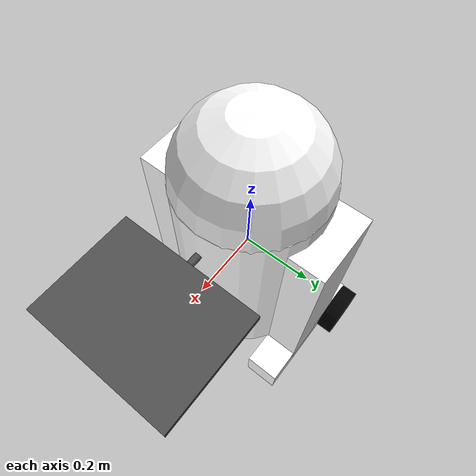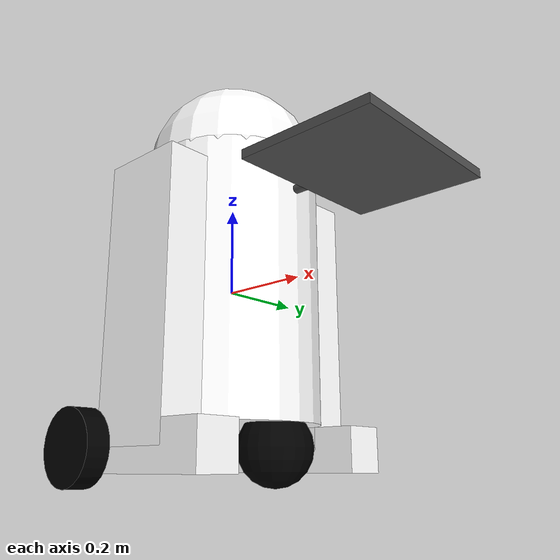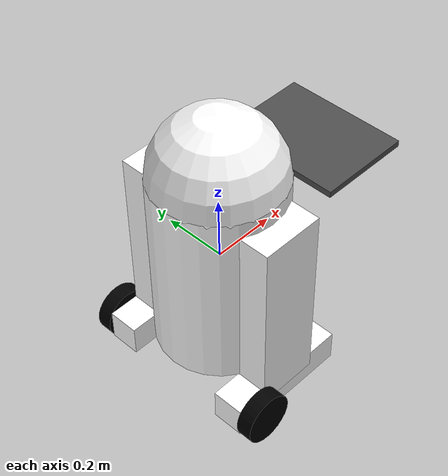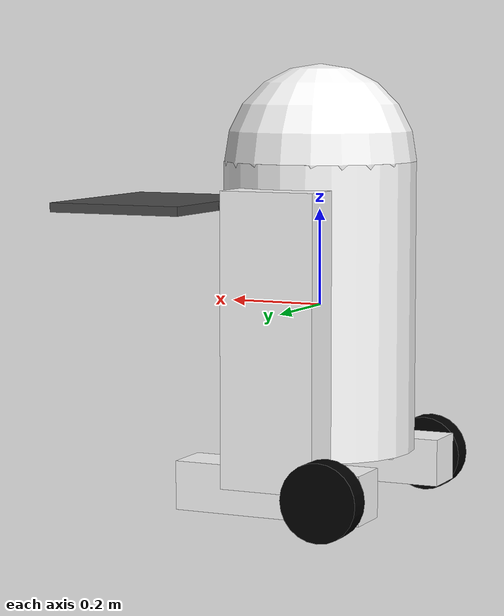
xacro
<?xml version="1.0"?>
<robot xmlns:xacro="http://www.ros.org/wiki/xacro">

  <xacro:include filename="inertial_macros.xacro"/>

  <material name="blue">
    <color rgba="0 0 0.8 1"/>
  </material>
  <material name="black">
    <color rgba="0 0 0 1"/>
  </material>
  <material name="white">
    <color rgba="1 1 1 1"/>
  </material>
  <material name="gray">
    <color rgba="0.65 0.65 0.65 1"/>
  </material>
  <material name="dark gray">
  <color rgba="0.3 0.3 0.3 1"/>
</material>

  <link name="base_link">
    <visual>
      <geometry>
        <cylinder length="0.6" radius="0.2"/>
      </geometry>
      <material name="white"/>
    </visual>
    <collision>
      <geometry>
        <cylinder length="0.6" radius="0.2"/>
      </geometry>
    </collision>
    <xacro:inertial_cylinder mass="1" length="0.6" radius="0.2">
        <origin xyz="0 0 0" rpy="0 0 0"/>
    </xacro:inertial_cylinder>
  </link>
   <gazebo reference="base_link">
        <material>Gazebo/White</material>
    </gazebo>

  <joint name="base_footprint_joint" type="fixed">
        <parent link="base_link"/>
        <child link="base_footprint"/>
        <origin xyz="0 0 0" rpy="0 0 0"/>
    </joint>

    <link name="base_footprint"></link>

  <link name="right_leg">
    <visual>
      <geometry>
        <box size="0.6 0.1 0.2"/>
      </geometry>
      <origin rpy="0 1.57075 0" xyz="0 0 -0.3"/>
      <material name="white"/>
    </visual>
    <collision>
      <geometry>
        <box size="0.6 0.1 0.2"/>
      </geometry>
      <origin rpy="0 1.57075 0" xyz="0 0 -0.3"/>
    </collision>
    <xacro:inertial_box mass="0.5" x="0.6" y="0.1" z="0.2">
        <origin xyz="0 0 -0.3" rpy="0 1.57075 0"/>
    </xacro:inertial_box>
  </link>
  <gazebo reference="right_leg">
      <material>Gazebo/White</material>
  </gazebo>

  <joint name="base_to_right_leg" type="fixed">
    <parent link="base_link"/>
    <child link="right_leg"/>
    <origin xyz="0 -0.22 0.25"/>
  </joint>

  <link name="right_base">
    <visual>
      <geometry>
        <box size="0.4 0.1 0.1"/>
      </geometry>
      <material name="white"/>
    </visual>
    <collision>
      <geometry>
        <box size="0.4 0.1 0.1"/>
      </geometry>
    </collision>
    <xacro:inertial_box mass="0.5" x="0.4" y="0.1" z="0.1">
        <origin xyz="0 0 0" rpy="0 0 0"/>
    </xacro:inertial_box>
  </link>
  <gazebo reference="right_base">
      <material>Gazebo/White</material>
  </gazebo>

  <joint name="right_base_joint" type="fixed">
    <parent link="right_leg"/>
    <child link="right_base"/>
    <origin xyz="0 0 -0.6"/>
  </joint>

  <link name="right_back_wheel">
    <visual>
      <origin rpy="1.57075 0 0" xyz="0 0 0"/>
      <geometry>
        <cylinder length="0.05" radius="0.08"/>
      </geometry>
      <material name="black"/>
    </visual>

    <collision>
      <origin rpy="1.57075 0 0" xyz="0 0 0"/>
      <geometry>
        <cylinder length="0.05" radius="0.08"/>
      </geometry>
    </collision>

    <xacro:inertial_cylinder mass="0.5" length="0.05" radius="0.08">
        <origin xyz="0 0 0" rpy="1.57075 0 0"/>
    </xacro:inertial_cylinder>
  </link>
  <gazebo reference="right_back_wheel">
      <material>Gazebo/Black</material>
  </gazebo>

  <joint name="right_back_wheel_joint" type="continuous">
    <axis rpy="0 0 0" xyz="0 1 0"/>
    <parent link="right_base"/>
    <child link="right_back_wheel"/>
    <origin rpy="0 0 0" xyz="-0.133333333333 -0.075 0"/>
  </joint>

  <link name="left_leg">
    <visual>
      <geometry>
        <box size="0.6 0.1 0.2"/>
      </geometry>
      <origin rpy="0 1.57075 0" xyz="0 0 -0.3"/>
      <material name="white"/>
    </visual>

    <collision>
      <geometry>
        <box size="0.6 0.1 0.2"/>
      </geometry>
      <origin rpy="0 1.57075 0" xyz="0 0 -0.3"/>
    </collision>

    <xacro:inertial_box mass="0.5" x="0.6" y="0.1" z="0.2">
        <origin xyz="0 0 -0.3" rpy="0 1.57075 0"/>
    </xacro:inertial_box>
  </link>
  <gazebo reference="left_leg">
      <material>Gazebo/White</material>
  </gazebo>

  <joint name="base_to_left_leg" type="fixed">
    <parent link="base_link"/>
    <child link="left_leg"/>
    <origin xyz="0 0.22 0.25"/>
  </joint>

  <link name="left_base">
    <visual>
      <geometry>
        <box size="0.4 0.1 0.1"/>
      </geometry>
      <material name="white"/>
    </visual>

    <collision>
      <geometry>
        <box size="0.4 0.1 0.1"/>
      </geometry>
    </collision>
     <xacro:inertial_box mass="0.5" x="0.4" y="0.1" z="0.1">
        <origin xyz="0 0 0" rpy="0 0 0"/>
    </xacro:inertial_box>
  </link>
  <gazebo reference="left_base">
      <material>Gazebo/White</material>
  </gazebo>

  <joint name="left_base_joint" type="fixed">
    <parent link="left_leg"/>
    <child link="left_base"/>
    <origin xyz="0 0 -0.6"/>
  </joint>

  <link name="left_back_wheel">
    <visual>
      <origin rpy="1.57075 0 0" xyz="0 0 0"/>
      <geometry>
        <cylinder length="0.05" radius="0.08"/>
      </geometry>
      <material name="black"/>
    </visual>

    <collision>
      <origin rpy="1.57075 0 0" xyz="0 0 0"/>
      <geometry>
        <cylinder length="0.05" radius="0.08"/>
      </geometry>
    </collision>

    <xacro:inertial_cylinder mass="0.5" length="0.05" radius="0.08">
        <origin xyz="0 0 0" rpy="1.57075 0 0"/>
    </xacro:inertial_cylinder>
  </link>
  <gazebo reference="left_back_wheel">
      <material>Gazebo/Black</material>
  </gazebo>

  <joint name="left_back_wheel_joint" type="continuous">
    <axis rpy="0 0 0" xyz="0 1 0"/>
    <parent link="left_base"/>
    <child link="left_back_wheel"/>
    <origin rpy="0 0 0" xyz="-0.133333333333 0.075 0"/>
  </joint>

    <joint name="caster_wheel_joint" type="fixed">
        <parent link="base_link"/>
        <child link="caster_wheel"/>
        <origin xyz="0.133333333333 0 -0.35"/>
    </joint>

    <link name="caster_wheel">
        <visual>
            <geometry>
                <sphere radius="0.08"/>
            </geometry>
            <material name="black"/>
        </visual>
        <collision>
            <geometry>
                <sphere radius="0.08"/>
            </geometry>
        </collision>
        <xacro:inertial_sphere mass="0.1" radius="0.08">
            <origin xyz="0 0 0" rpy="0 0 0"/>
        </xacro:inertial_sphere>
    </link>

    <gazebo reference="caster_wheel">
        <material>Gazebo/Black</material>
        <mu1 value="0.001"/>
        <mu2 value="0.001"/>
    </gazebo>

  <link name="head">
    <visual>
      <geometry>
        <sphere radius="0.2"/>
      </geometry>
      <material name="white"/>
    </visual>

    <collision>
      <geometry>
        <sphere radius="0.2"/>
      </geometry>
    </collision>

    <xacro:inertial_sphere mass="0.5" radius="0.2">
        <origin xyz="0 0 0" rpy="0 0 0"/>
    </xacro:inertial_sphere>
  </link>
  <gazebo reference="head">
      <material>Gazebo/White</material>
  </gazebo>

  <joint name="head_swivel" type="fixed">
    <parent link="base_link"/>
    <child link="head"/>
    <axis xyz="0 0 1"/>
    <origin xyz="0 0 0.3"/>
  </joint>

<link name="tray_pole">
  <visual>
    <origin xyz="0.06 0 0" rpy="0 1.5708 0"/>
    <geometry>
      <cylinder length="0.12" radius="0.01"/>
    </geometry>
    <material name="dark gray"/>
  </visual>

  <collision>
    <origin xyz="0.06 0 0" rpy="0 1.5708 0"/>
    <geometry>
      <cylinder length="0.12" radius="0.01"/>
    </geometry>
  </collision>

  <xacro:inertial_cylinder mass="0.1" length="0.12" radius="0.01">
        <origin xyz="0.06 0 0" rpy="0 1.5708 0"/>
    </xacro:inertial_cylinder>
</link>
<gazebo reference="tray_pole">
      <material>Gazebo/DarkGrey</material>
  </gazebo>

<joint name="base_to_pole" type="fixed">
  <parent link="base_link"/>
  <child link="tray_pole"/>
  <origin xyz="0.18 0 0.20" rpy="0 0 0"/>
</joint>

<link name="tray">
  <visual>
    <geometry>
      <box size="0.30 0.40 0.02"/>
    </geometry>
    <material name="dark gray"/>
  </visual>

  <collision>
    <geometry>
      <box size="0.30 0.40 0.02"/>
    </geometry>
  </collision>

  <xacro:inertial_box mass="0.05" x="0.30" y="0.40" z="0.02">
        <origin xyz="0 0 0" rpy="0 0 0"/>
    </xacro:inertial_box>
</link>
<gazebo reference="tray">
    <material>Gazebo/DarkGrey</material>
</gazebo>

<joint name="pole_to_tray" type="fixed">
  <parent link="tray_pole"/>
  <child link="tray"/>
  <origin xyz="0.2 0 0" rpy="0 0 0"/>
</joint>

</robot>
